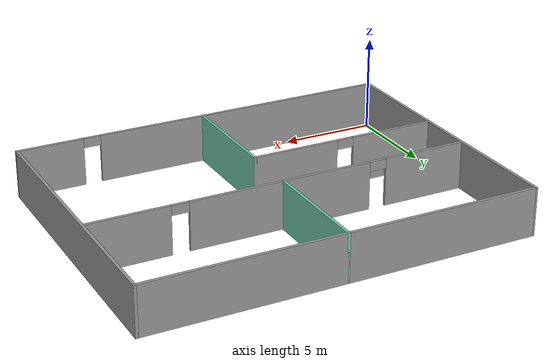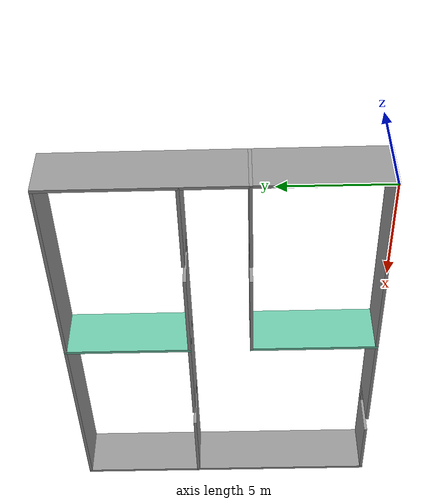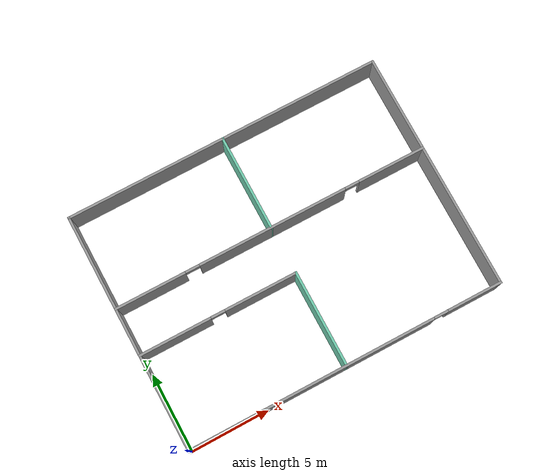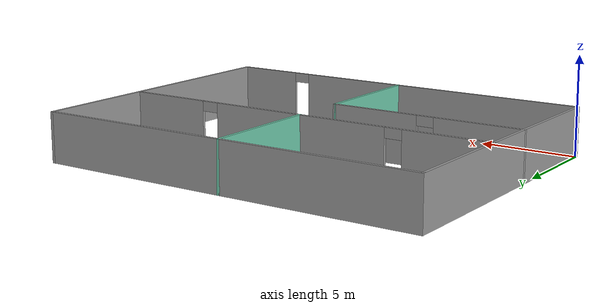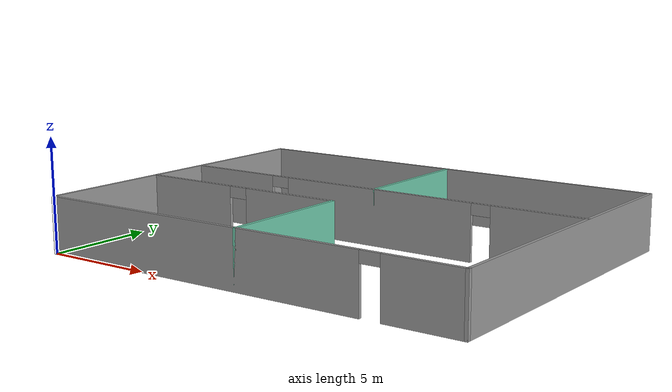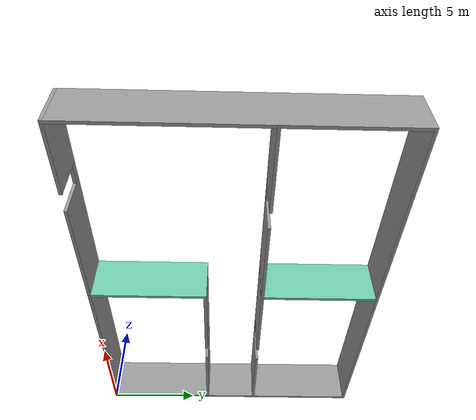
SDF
<?xml version='1.0'?>
<sdf version='1.6'>
  <model name='mybuilding'>
    <pose frame=''>10 7.5 0 0 -0 0</pose>
    <link name='Wall_11'>
      <collision name='Wall_11_Collision'>
        <geometry>
          <box>
            <size>15.15 0.15 2.5</size>
          </box>
        </geometry>
        <pose frame=''>0 0 1.25 0 -0 0</pose>
      </collision>
      <visual name='Wall_11_Visual'>
        <pose frame=''>0 0 1.25 0 -0 0</pose>
        <geometry>
          <box>
            <size>15.15 0.15 2.5</size>
          </box>
        </geometry>
        <material>
          <script>
            <uri>file://media/materials/scripts/gazebo.material</uri>
            <name>Gazebo/Grey</name>
          </script>
          <ambient>1 1 1 1</ambient>
        </material>
        <meta>
          <layer>0</layer>
        </meta>
      </visual>
      <pose frame=''>-10 0 0 0 -0 1.5708</pose>
    </link>
    <link name='Wall_13'>
      <collision name='Wall_13_Collision'>
        <geometry>
          <box>
            <size>20.15 0.15 2.5</size>
          </box>
        </geometry>
        <pose frame=''>0 0 1.25 0 -0 0</pose>
      </collision>
      <visual name='Wall_13_Visual'>
        <pose frame=''>0 0 1.25 0 -0 0</pose>
        <geometry>
          <box>
            <size>20.15 0.15 2.5</size>
          </box>
        </geometry>
        <material>
          <script>
            <uri>file://media/materials/scripts/gazebo.material</uri>
            <name>Gazebo/Grey</name>
          </script>
          <ambient>1 1 1 1</ambient>
        </material>
        <meta>
          <layer>0</layer>
        </meta>
      </visual>
      <pose frame=''>0 7.5 0 0 -0 0</pose>
    </link>
    <link name='Wall_15'>
      <collision name='Wall_15_Collision'>
        <geometry>
          <box>
            <size>15.15 0.15 2.5</size>
          </box>
        </geometry>
        <pose frame=''>0 0 1.25 0 -0 0</pose>
      </collision>
      <visual name='Wall_15_Visual'>
        <pose frame=''>0 0 1.25 0 -0 0</pose>
        <geometry>
          <box>
            <size>15.15 0.15 2.5</size>
          </box>
        </geometry>
        <material>
          <script>
            <uri>file://media/materials/scripts/gazebo.material</uri>
            <name>Gazebo/Grey</name>
          </script>
          <ambient>1 1 1 1</ambient>
        </material>
        <meta>
          <layer>0</layer>
        </meta>
      </visual>
      <pose frame=''>10 0 0 0 0 -1.5708</pose>
    </link>
    <link name='Wall_17'>
      <pose frame=''>0 1.5 0 0 -0 0</pose>
      <visual name='Wall_17_Visual_0'>
        <pose frame=''>-7.81586 0 1.25 0 -0 0</pose>
        <geometry>
          <box>
            <size>4.51827 0.15 2.5</size>
          </box>
        </geometry>
        <material>
          <script>
            <uri>file://media/materials/scripts/gazebo.material</uri>
            <name>Gazebo/Grey</name>
          </script>
          <ambient>1 1 1 1</ambient>
        </material>
        <meta>
          <layer>0</layer>
        </meta>
      </visual>
      <collision name='Wall_17_Collision_0'>
        <geometry>
          <box>
            <size>4.51827 0.15 2.5</size>
          </box>
        </geometry>
        <pose frame=''>-7.81586 0 1.25 0 -0 0</pose>
      </collision>
      <visual name='Wall_17_Visual_1'>
        <pose frame=''>0.10099 0 1.25 0 -0 0</pose>
        <geometry>
          <box>
            <size>9.51544 0.15 2.5</size>
          </box>
        </geometry>
        <material>
          <script>
            <uri>file://media/materials/scripts/gazebo.material</uri>
            <name>Gazebo/Grey</name>
          </script>
          <ambient>1 1 1 1</ambient>
        </material>
        <meta>
          <layer>0</layer>
        </meta>
      </visual>
      <collision name='Wall_17_Collision_1'>
        <geometry>
          <box>
            <size>9.51544 0.15 2.5</size>
          </box>
        </geometry>
        <pose frame=''>0.10099 0 1.25 0 -0 0</pose>
      </collision>
      <visual name='Wall_17_Visual_2'>
        <pose frame=''>7.91685 0 1.25 0 -0 0</pose>
        <geometry>
          <box>
            <size>4.31629 0.15 2.5</size>
          </box>
        </geometry>
        <material>
          <script>
            <uri>file://media/materials/scripts/gazebo.material</uri>
            <name>Gazebo/Grey</name>
          </script>
          <ambient>1 1 1 1</ambient>
        </material>
        <meta>
          <layer>0</layer>
        </meta>
      </visual>
      <collision name='Wall_17_Collision_2'>
        <geometry>
          <box>
            <size>4.31629 0.15 2.5</size>
          </box>
        </geometry>
        <pose frame=''>7.91685 0 1.25 0 -0 0</pose>
      </collision>
      <visual name='Wall_17_Visual_3'>
        <pose frame=''>-5.10673 0 2.25 0 -0 0</pose>
        <geometry>
          <box>
            <size>0.9 0.15 0.5</size>
          </box>
        </geometry>
        <material>
          <script>
            <uri>file://media/materials/scripts/gazebo.material</uri>
            <name>Gazebo/Grey</name>
          </script>
          <ambient>1 1 1 1</ambient>
        </material>
        <meta>
          <layer>0</layer>
        </meta>
      </visual>
      <collision name='Wall_17_Collision_3'>
        <geometry>
          <box>
            <size>0.9 0.15 0.5</size>
          </box>
        </geometry>
        <pose frame=''>-5.10673 0 2.25 0 -0 0</pose>
      </collision>
      <visual name='Wall_17_Visual_4'>
        <pose frame=''>5.30871 0 2.25 0 -0 0</pose>
        <geometry>
          <box>
            <size>0.9 0.15 0.5</size>
          </box>
        </geometry>
        <material>
          <script>
            <uri>file://media/materials/scripts/gazebo.material</uri>
            <name>Gazebo/Grey</name>
          </script>
          <ambient>1 1 1 1</ambient>
        </material>
        <meta>
          <layer>0</layer>
        </meta>
      </visual>
      <collision name='Wall_17_Collision_4'>
        <geometry>
          <box>
            <size>0.9 0.15 0.5</size>
          </box>
        </geometry>
        <pose frame=''>5.30871 0 2.25 0 -0 0</pose>
      </collision>
    </link>
    <link name='Wall_19'>
      <collision name='Wall_19_Collision'>
        <geometry>
          <box>
            <size>6.15 0.15 2.5</size>
          </box>
        </geometry>
        <pose frame=''>0 0 1.25 0 -0 0</pose>
      </collision>
      <visual name='Wall_19_Visual'>
        <pose frame=''>0 0 1.25 0 -0 0</pose>
        <geometry>
          <box>
            <size>6.15 0.15 2.5</size>
          </box>
        </geometry>
        <material>
          <script>
            <uri>file://media/materials/scripts/gazebo.material</uri>
            <name>Gazebo/Grey</name>
          </script>
          <ambient>0.435294 0.796078 0.67451 1</ambient>
        </material>
        <meta>
          <layer>0</layer>
        </meta>
      </visual>
      <pose frame=''>0 4.5 0 0 0 -1.5708</pose>
    </link>
    <link name='Wall_21'>
      <pose frame=''>-5 -1.5 0 0 -0 0</pose>
      <visual name='Wall_21_Visual_0'>
        <pose frame=''>-2.77518 0 1.25 0 -0 0</pose>
        <geometry>
          <box>
            <size>4.59964 0.15 2.5</size>
          </box>
        </geometry>
        <material>
          <script>
            <uri>file://media/materials/scripts/gazebo.material</uri>
            <name>Gazebo/Grey</name>
          </script>
          <ambient>1 1 1 1</ambient>
        </material>
        <meta>
          <layer>0</layer>
        </meta>
      </visual>
      <collision name='Wall_21_Collision_0'>
        <geometry>
          <box>
            <size>4.59964 0.15 2.5</size>
          </box>
        </geometry>
        <pose frame=''>-2.77518 0 1.25 0 -0 0</pose>
      </collision>
      <visual name='Wall_21_Visual_1'>
        <pose frame=''>2.74982 0 1.25 0 -0 0</pose>
        <geometry>
          <box>
            <size>4.65036 0.15 2.5</size>
          </box>
        </geometry>
        <material>
          <script>
            <uri>file://media/materials/scripts/gazebo.material</uri>
            <name>Gazebo/Grey</name>
          </script>
          <ambient>1 1 1 1</ambient>
        </material>
        <meta>
          <layer>0</layer>
        </meta>
      </visual>
      <collision name='Wall_21_Collision_1'>
        <geometry>
          <box>
            <size>4.65036 0.15 2.5</size>
          </box>
        </geometry>
        <pose frame=''>2.74982 0 1.25 0 -0 0</pose>
      </collision>
      <visual name='Wall_21_Visual_2'>
        <pose frame=''>-0.02536 0 2.25 0 -0 0</pose>
        <geometry>
          <box>
            <size>0.9 0.15 0.5</size>
          </box>
        </geometry>
        <material>
          <script>
            <uri>file://media/materials/scripts/gazebo.material</uri>
            <name>Gazebo/Grey</name>
          </script>
          <ambient>1 1 1 1</ambient>
        </material>
        <meta>
          <layer>0</layer>
        </meta>
      </visual>
      <collision name='Wall_21_Collision_2'>
        <geometry>
          <box>
            <size>0.9 0.15 0.5</size>
          </box>
        </geometry>
        <pose frame=''>-0.02536 0 2.25 0 -0 0</pose>
      </collision>
    </link>
    <link name='Wall_24'>
      <collision name='Wall_24_Collision'>
        <geometry>
          <box>
            <size>6.15 0.15 2.5</size>
          </box>
        </geometry>
        <pose frame=''>0 0 1.25 0 -0 0</pose>
      </collision>
      <visual name='Wall_24_Visual'>
        <pose frame=''>0 0 1.25 0 -0 0</pose>
        <geometry>
          <box>
            <size>6.15 0.15 2.5</size>
          </box>
        </geometry>
        <material>
          <script>
            <uri>file://media/materials/scripts/gazebo.material</uri>
            <name>Gazebo/Grey</name>
          </script>
          <ambient>0.435294 0.796078 0.67451 1</ambient>
        </material>
        <meta>
          <layer>0</layer>
        </meta>
      </visual>
      <pose frame=''>0 -4.5 0 0 0 -1.5708</pose>
    </link>
    <link name='Wall_9'>
      <pose frame=''>0 -7.5 0 0 -0 0</pose>
      <visual name='Wall_9_Visual_0'>
        <pose frame=''>-2.20129 0 1.25 0 -0 0</pose>
        <geometry>
          <box>
            <size>15.7474 0.15 2.5</size>
          </box>
        </geometry>
        <material>
          <script>
            <uri>file://media/materials/scripts/gazebo.material</uri>
            <name>Gazebo/Grey</name>
          </script>
          <ambient>1 1 1 1</ambient>
        </material>
        <meta>
          <layer>0</layer>
        </meta>
      </visual>
      <collision name='Wall_9_Collision_0'>
        <geometry>
          <box>
            <size>15.7474 0.15 2.5</size>
          </box>
        </geometry>
        <pose frame=''>-2.20129 0 1.25 0 -0 0</pose>
      </collision>
      <visual name='Wall_9_Visual_1'>
        <pose frame=''>8.32371 0 1.25 0 -0 0</pose>
        <geometry>
          <box>
            <size>3.50258 0.15 2.5</size>
          </box>
        </geometry>
        <material>
          <script>
            <uri>file://media/materials/scripts/gazebo.material</uri>
            <name>Gazebo/Grey</name>
          </script>
          <ambient>1 1 1 1</ambient>
        </material>
        <meta>
          <layer>0</layer>
        </meta>
      </visual>
      <collision name='Wall_9_Collision_1'>
        <geometry>
          <box>
            <size>3.50258 0.15 2.5</size>
          </box>
        </geometry>
        <pose frame=''>8.32371 0 1.25 0 -0 0</pose>
      </collision>
      <visual name='Wall_9_Visual_2'>
        <pose frame=''>6.12242 0 2.25 0 -0 0</pose>
        <geometry>
          <box>
            <size>0.9 0.15 0.5</size>
          </box>
        </geometry>
        <material>
          <script>
            <uri>file://media/materials/scripts/gazebo.material</uri>
            <name>Gazebo/Grey</name>
          </script>
          <ambient>1 1 1 1</ambient>
        </material>
        <meta>
          <layer>0</layer>
        </meta>
      </visual>
      <collision name='Wall_9_Collision_2'>
        <geometry>
          <box>
            <size>0.9 0.15 0.5</size>
          </box>
        </geometry>
        <pose frame=''>6.12242 0 2.25 0 -0 0</pose>
      </collision>
    </link>
    <static>1</static>
  </model>
</sdf>
